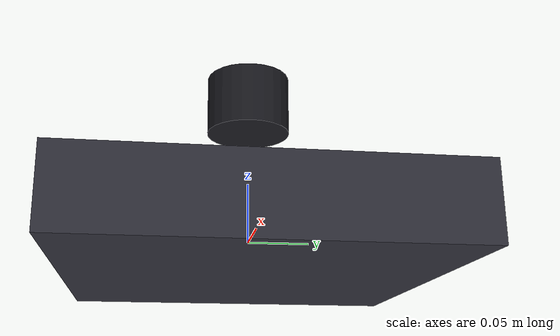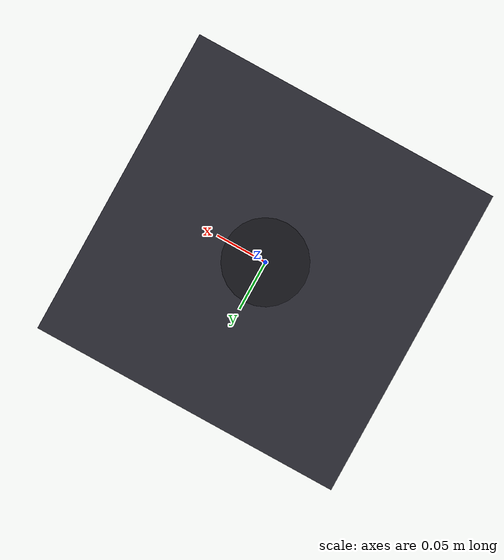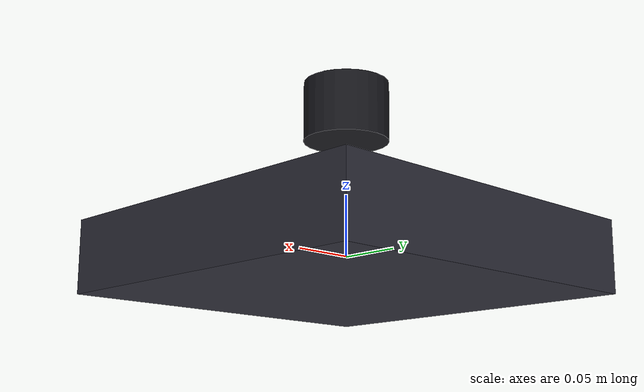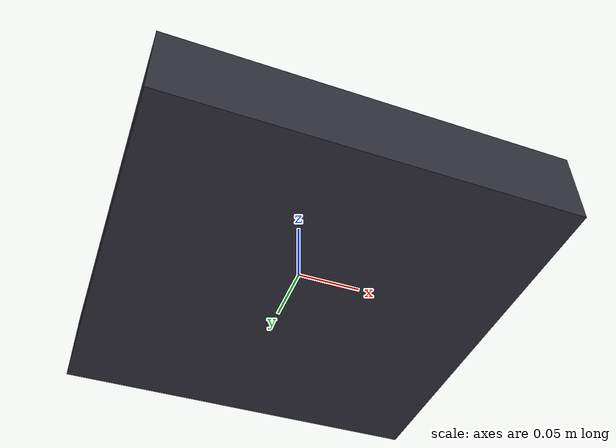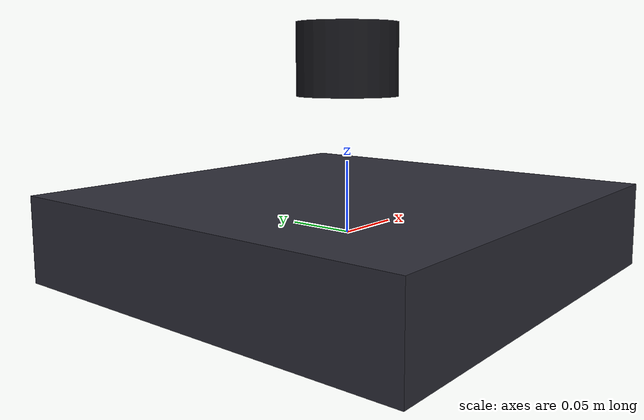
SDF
<?xml version="1.0" ?>
cam0_link  (+Y, "left")
                     base_link --(fixed)--> cam1_link  (-Y, "right")
                     base_link --(fixed)--> imu_link   (coincident, body center)

  STEREO (deviation #3): baseline = 0.12 m. cam0 @ y=+0.06 (left), cam1 @ y=-0.06
    (right). Both 1280x720, hfov=90deg -> fx=fy=640, cx=640, cy=360. Gazebo does
    NOT encode the stereo baseline; Phase-5 bridge sets cam1 CameraInfo.P[3] =
    -fx*baseline = -640*0.12 = -76.8.

  KINEMATIC MOTION: no thrust/aero. Per-link gravity disabled; the body is driven
    directly by gz-sim VelocityControl (cmd_vel twist). Ground truth is published
    as a POSE TOPIC (deviation #4: not TF) by PosePublisher.

  GZ TOPICS emitted by this model (names already match the /argus/* ROS contract,
  so the Phase-5 bridge is a 1:1 pass-through; gz derives each camera_info topic
  from its image topic's parent namespace, so the image topic MUST be one level
  deep -- argus/camN/image_raw -- or both cameras collide on argus/camera_info):
    images      :  argus/cam0/image_raw , argus/cam1/image_raw   (30 Hz)
    cam info    :  argus/cam0/camera_info , argus/cam1/camera_info
    imu         :  argus/imu                 (250 Hz)
    lidar (D6)  :  argus/lidar (LaserScan) , argus/lidar/points (PointCloudPacked, 10 Hz)
    rangefinder :  argus/rangefinder        (1-ray LaserScan, down, 20 Hz)
    ground truth:  /model/argus_drone/pose   (100 Hz, gz.msgs.Pose: world->body)
    cmd_vel     :  /model/argus_drone/cmd_vel (gz.msgs.Twist, kinematic input)
-->
<sdf version="1.10">
  <model name="argus_drone">
    <self_collide>false</self_collide>

    <!-- ===================== Body ===================== -->
    <!-- Canonical link at the model origin: model world pose == base_link pose. -->
    <link name="base_link">
      <gravity>false</gravity>            <!-- kinematic: held by VelocityControl, not physics -->
      <inertial>
        <mass>1.5</mass>
        <inertia>
          <ixx>0.0117</ixx><iyy>0.0117</iyy><izz>0.0225</izz>
          <ixy>0</ixy><ixz>0</ixz><iyz>0</iyz>
        </inertia>
      </inertial>

      <!-- Compact body shell. -->
      <collision name="body_col">
        <geometry><box><size>0.30 0.30 0.06</size></box></geometry>
      </collision>
      <visual name="body_vis">
        <geometry><box><size>0.30 0.30 0.06</size></box></geometry>
        <material><ambient>0.10 0.10 0.12 1</ambient><diffuse>0.18 0.18 0.22 1</diffuse><specular>0.2 0.2 0.2 1</specular></material>
      </visual>
      <!-- Forward camera bar (cosmetic landmark for "front"). -->
      <visual name="cam_bar_vis">
        <pose>0.10 0 0 0 0 0</pose>
        <geometry><box><size>0.04 0.18 0.04</size></box></geometry>
        <material><ambient>0.05 0.05 0.05 1</ambient><diffuse>0.12 0.12 0.12 1</diffuse></material>
      </visual>
    </link>

    <!-- ===================== Left camera (cam0) ===================== -->
    <link name="cam0_link">
      <pose>0.10 0.06 0 0 0 0</pose>     <!-- +Y = left -->
      <gravity>false</gravity>
      <inertial>
        <mass>0.02</mass>
        <inertia><ixx>1e-5</ixx><iyy>1e-5</iyy><izz>1e-5</izz><ixy>0</ixy><ixz>0</ixz><iyz>0</iyz></inertia>
      </inertial>
      <visual name="cam0_vis">
        <geometry><box><size>0.03 0.03 0.03</size></box></geometry>
        <material><ambient>0.0 0.15 0.0 1</ambient><diffuse>0.0 0.55 0.1 1</diffuse></material>
      </visual>
      <sensor name="cam0" type="camera">
        <pose>0 0 0 0 0 0</pose>          <!-- looks down +X -->
        <always_on>1</always_on>
        <update_rate>15</update_rate>

        <topic>argus/cam0/image_raw</topic>          <!-- -> camera_info @ argus/cam0/camera_info -->
        <gz_frame_id>cam0_optical_frame</gz_frame_id>
        <camera>
          <horizontal_fov>1.5707963267948966</horizontal_fov>  <!-- 90 deg -> fx=fy=640 @ 1280px -->
          <image><width>1280</width><height>720</height><format>R8G8B8</format></image>
          <clip><near>0.05</near><far>50.0</far></clip>
        </camera>
      </sensor>
    </link>
    <joint name="cam0_joint" type="fixed">
      <parent>base_link</parent>
      <child>cam0_link</child>
    </joint>

    <!-- ===================== Right camera (cam1) ===================== -->
    <link name="cam1_link">
      <pose>0.10 -0.06 0 0 0 0</pose>    <!-- -Y = right (baseline 0.12 m from cam0) -->
      <gravity>false</gravity>
      <inertial>
        <mass>0.02</mass>
        <inertia><ixx>1e-5</ixx><iyy>1e-5</iyy><izz>1e-5</izz><ixy>0</ixy><ixz>0</ixz><iyz>0</iyz></inertia>
      </inertial>
      <visual name="cam1_vis">
        <geometry><box><size>0.03 0.03 0.03</size></box></geometry>
        <material><ambient>0.15 0.0 0.0 1</ambient><diffuse>0.55 0.0 0.1 1</diffuse></material>
      </visual>
      <sensor name="cam1" type="camera">
        <pose>0 0 0 0 0 0</pose>
        <always_on>1</always_on>
        <update_rate>15</update_rate>

        <topic>argus/cam1/image_raw</topic>          <!-- -> camera_info @ argus/cam1/camera_info -->
        <gz_frame_id>cam1_optical_frame</gz_frame_id>
        <camera>
          <horizontal_fov>1.5707963267948966</horizontal_fov>
          <image><width>1280</width><height>720</height><format>R8G8B8</format></image>
          <clip><near>0.05</near><far>50.0</far></clip>
        </camera>
      </sensor>
    </link>
    <joint name="cam1_joint" type="fixed">
      <parent>base_link</parent>
      <child>cam1_link</child>
    </joint>

    <!-- ===================== IMU ===================== -->
    <!-- Coincident with body center; IMU data expressed in imu_link (body-aligned, not optical). -->
    <link name="imu_link">
      <pose>0 0 0 0 0 0</pose>
      <gravity>false</gravity>
      <inertial>
        <mass>0.01</mass>
        <inertia><ixx>1e-6</ixx><iyy>1e-6</iyy><izz>1e-6</izz><ixy>0</ixy><ixz>0</ixz><iyz>0</iyz></inertia>
      </inertial>
      <sensor name="imu" type="imu">
        <always_on>1</always_on>
        <update_rate>250</update_rate>     <!-- matches 250 Hz physics; IMU <= physics rate -->
        <topic>argus/imu</topic>
        <gz_frame_id>imu_link</gz_frame_id>
        <imu>
        </imu>
      </sensor>
    </link>
    <joint name="imu_joint" type="fixed">
      <parent>base_link</parent>
      <child>imu_link</child>
    </joint>

    <!-- ===================== 3D LiDAR (Day-6 Pillar 4) ===================== -->
    <link name="lidar_link">
      <pose>0 0 0.12 0 0 0</pose>
      <gravity>false</gravity>
      <inertial>
        <mass>0.05</mass>
        <inertia><ixx>1e-5</ixx><iyy>1e-5</iyy><izz>1e-5</izz><ixy>0</ixy><ixz>0</ixz><iyz>0</iyz></inertia>
      </inertial>
      <visual name="lidar_vis">
        <geometry><cylinder><radius>0.035</radius><length>0.05</length></cylinder></geometry>
        <material><ambient>0.05 0.05 0.05 1</ambient><diffuse>0.1 0.1 0.12 1</diffuse></material>
      </visual>
      <sensor name="lidar3d" type="gpu_lidar">
        <pose>0 0 0 0 0 0</pose>
        <always_on>1</always_on>
        <update_rate>10</update_rate>
        <topic>argus/lidar</topic>
        <gz_frame_id>lidar_link</gz_frame_id>
        <lidar>
          <scan>
            <horizontal>
              <samples>360</samples>
              <resolution>1</resolution>
              <min_angle>-3.14159265</min_angle>
              <max_angle>3.14159265</max_angle>
            </horizontal>
            <vertical>
              <samples>16</samples>
              <resolution>1</resolution>
              <min_angle>-0.2618</min_angle>   <!-- -15 deg -->
              <max_angle>0.2618</max_angle>     <!-- +15 deg -->
            </vertical>
          </scan>
          <range>
            <min>0.30</min>
            <max>15.0</max>
            <resolution>0.01</resolution>
          </range>
        </lidar>
      </sensor>
    </link>
    <joint name="lidar_joint" type="fixed">
      <parent>base_link</parent>
      <child>lidar_link</child>
    </joint>

    <!-- ===================== Downward rangefinder (altimeter) ===================== -->
    <!-- Single down-pointing beam for GPS-free altitude hold. +X is the lidar
         boresight, so pitch +90 deg aims it at -Z (straight down). Publishes a
         1-ray LaserScan on argus/rangefinder. -->
    <link name="rangefinder_link">
      <pose>0 0 -0.04 0 1.5708 0</pose>
      <gravity>false</gravity>
      <inertial>
        <mass>0.01</mass>
        <inertia><ixx>1e-6</ixx><iyy>1e-6</iyy><izz>1e-6</izz><ixy>0</ixy><ixz>0</ixz><iyz>0</iyz></inertia>
      </inertial>
      <sensor name="rangefinder" type="gpu_lidar">
        <pose>0 0 0 0 0 0</pose>
        <always_on>1</always_on>
        <update_rate>20</update_rate>
        <topic>argus/rangefinder</topic>
        <gz_frame_id>rangefinder_link</gz_frame_id>
        <lidar>
          <scan>
            <horizontal><samples>1</samples><resolution>1</resolution><min_angle>0</min_angle><max_angle>0</max_angle></horizontal>
            <vertical><samples>1</samples><resolution>1</resolution><min_angle>0</min_angle><max_angle>0</max_angle></vertical>
          </scan>
          <range><min>0.10</min><max>20.0</max><resolution>0.01</resolution></range>
        </lidar>
      </sensor>
    </link>
    <joint name="rangefinder_joint" type="fixed">
      <parent>base_link</parent>
      <child>rangefinder_link</child>
    </joint>

    <!-- ===================== Systems (travel with the model on spawn) ===================== -->
    <!-- Kinematic drive: sets the model's twist directly from gz.msgs.Twist on
         /model/argus_drone/cmd_vel. Holds zero velocity when idle (hover). -->
    <plugin filename="gz-sim-velocity-control-system"
            name="gz::sim::systems::VelocityControl"/>

    <!-- Ground-truth pose (deviation #4: a topic, NOT a TF edge). Publishes the
         model's world pose on /model/argus_drone/pose at 100 Hz. -->
    <plugin filename="gz-sim-pose-publisher-system"
            name="gz::sim::systems::PosePublisher">
      <publish_link_pose>false</publish_link_pose>
      <publish_sensor_pose>false</publish_sensor_pose>
      <publish_collision_pose>false</publish_collision_pose>
      <publish_visual_pose>false</publish_visual_pose>
      <publish_nested_model_pose>true</publish_nested_model_pose>
      <use_pose_vector_msg>false</use_pose_vector_msg>
      <update_frequency>100</update_frequency>
      <static_publisher>false</static_publisher>
    </plugin>

  </model>
</sdf>
